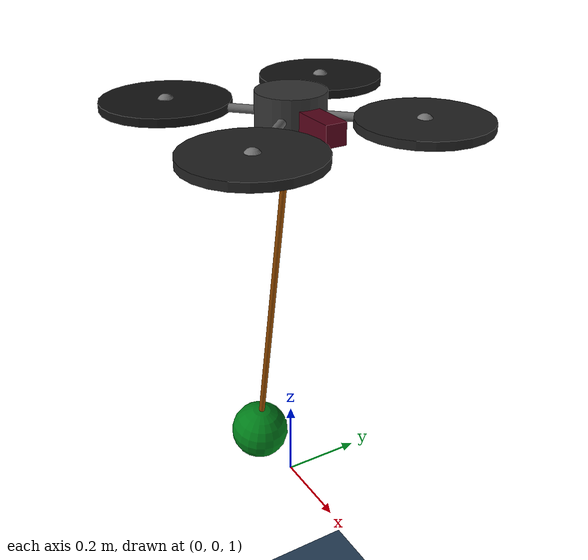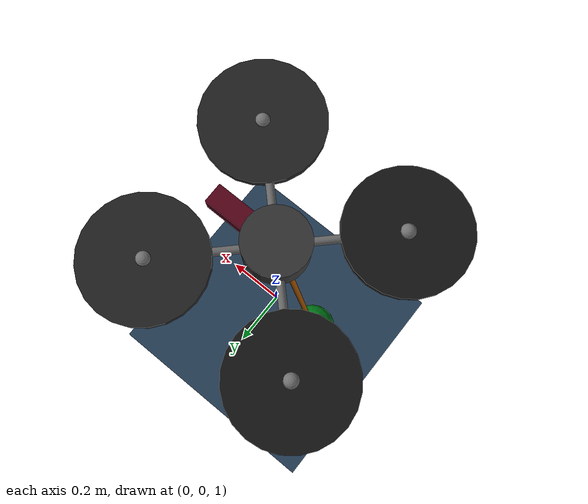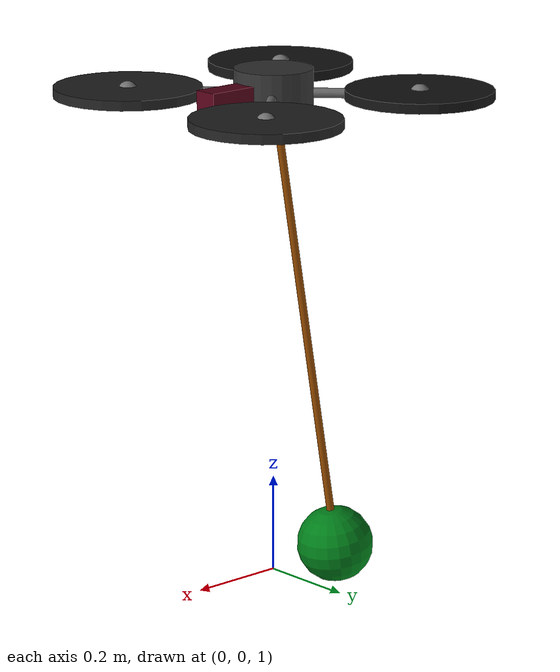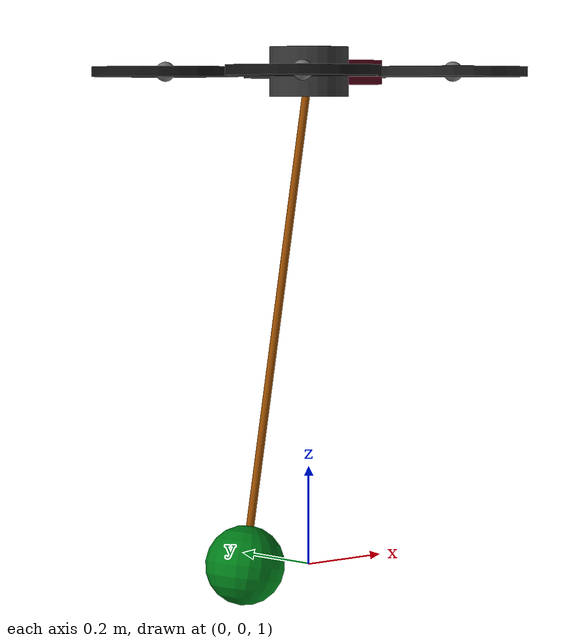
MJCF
<!-- By Valerii Lisnychuk, goldunlevar@gmail.com-->
<!-- Diplomova prace, leto 2025, CVUT FS-->

<!-- Symetricky model, tvar X, bez odporu prostredi-->
<mujoco model="Model quadcopter_v2_debug">
	<statistic meansize="0.15"/>
	<option timestep ="0.05" density="0" viscosity="0"/> <!-- density="1.205" viscosity="1.8e-5" density[kg/m3] viscosity[kg/(ms)]-->

	<visual>
		<headlight diffuse="0.7 0.7 0.7" ambient="0.7 0.7 0.7" specular="1.5 1.5 1.5"/>
		<rgba haze="0.1 0.2 0.3 1"/>
		<global azimuth="100" elevation="-30" ellipsoidinertia="true"/>
		<map zfar="500"/>
  	</visual>

	<asset>
		<!--scena-->
		<texture type="skybox" builtin="gradient" rgb1="0.3 0.5 0.7" rgb2="0 0 0" width="512" height="512"/><!--nebo-->

		<texture type="2d" name="podlaha_textura" builtin="checker" mark="edge" rgb1="0.2 0.3 0.4" rgb2="0.1 0.2 0.3" markrgb="0.8 0.8 0.8" width="255" height="255"/>
		<material name="floor" texture="podlaha_textura" texuniform="true" texrepeat="3 3" reflectance="0"/><!--podlaha-->

		<!-- Темное карбоновое покрытие -->
        <texture type="2d" name="carbon_texture_dark" builtin="checker" mark="cross" rgb1="0.03 0.03 0.03" rgb2="0.12 0.12 0.12" markrgb="0.18 0.18 0.18" width="1024" height="1024"/>
		<material name="carbon_dark" texture="carbon_texture_dark" texuniform="true" texrepeat="50 50" reflectance="0.3" shininess="0.8" specular="0.5"/>

        <!-- Светлое карбоновое покрытие -->
		<texture type="2d" name="carbon_texture_light" builtin="checker" mark="cross" rgb1="0.08 0.08 0.08" rgb2="0.18 0.18 0.18" markrgb="0.25 0.25 0.25" width="1024" height="1024"/>
        <material name="carbon_light" texture="carbon_texture_light" texuniform="true" texrepeat="50 50" reflectance="0.35" shininess="0.85" specular="0.6"/>
	</asset>

	<worldbody><!--SI units-->
		<!--svetlo a podlaha-->
        <light diffuse="0.7 0.7 0.7" pos="0 0 30" dir="0 0 -1" directional="false"/>
		<geom name="floor" type="plane" size="0 0 0.1" material="floor"/>

		<!--kvadrokoptera-->
		<body name="quadcopter" pos="0 0 2">
			<geom type="cylinder" name="zakladna" size="0.08 0.05" mass="0.8" rgba="0.2 0.2 0.2 1"/>
			<geom type="box" name="pred" size="0.1 0.025 0.025" mass="0" pos="0.08 0 0" rgba="0.3373 0.0118 0.0980 1"/>
			<site name="IMU+other" type="capsule" size="0.04" rgba="1 1 0 1"/> <!--misto umisteni vsech senzoru-->
			<!--IMU=Inertial measurement unit-->

			<body euler="-90 45 0"> <!-- rotor1 - rotor3-->
				<geom type="cylinder" size="0.01 0.29" mass="0.55" rgba="0.41 0.41 0.41 1"/>

				<geom type="cylinder" name="rotor1" pos="0 0 0.29" euler="90 0 0" size="0.15 0.01" mass="0.025" material="carbon_light"/>
				<site name="thrust1" pos="0 0 0.29" euler="90 0 0" size="0.02" rgba="0.45 0.45 0.45 1"/>

				<geom type="cylinder" name="rotor3" pos="0 0 -0.29" euler="90 0 0" size="0.15 0.01" mass="0.025" material="carbon_dark"/>
				<site name="thrust3" pos="0 0 -0.29" euler="90 0 0" size="0.02" rgba="0.45 0.45 0.45 1"/>
			</body>

			<body euler="-90 -45 0"> <!-- rotor2 - rotor4-->
				<geom type="cylinder" size="0.01 0.29" mass="0.55" rgba="0.41 0.41 0.41 1"/>

				<geom type="cylinder" name="rotor2" pos="0 0 -0.29" euler="90 0 0" size="0.15 0.01" mass="0.025" material="carbon_light"/>
				<site name="thrust2" pos="0 0 -0.29" euler="90 0 0" size="0.02" rgba="0.45 0.45 0.45 1"/>

				<geom type="cylinder" name="rotor4" pos="0 0 0.29" euler="90 0 0" size="0.15 0.01" mass="0.025" material="carbon_dark"/>
				<site name="thrust4" pos="0 0 0.29" euler="90 0 0" size="0.02" rgba="0.45 0.45 0.45 1"/>
			</body>

			<!--load-->
			<body name="pendulum" pos="0 0 0" euler="0 10 0">
				<joint type="ball" name="spojeni_lano"/>
				<geom type="cylinder" name="lano" pos="0 0 -0.5" size="0.008 0.5" mass="0" rgba="0.58 0.29 0 1" contype="0" conaffinity="0"/>

				<geom name="load" type="sphere" size="0.08" pos="0 0 -1" mass="0" rgba="0 0.5 0.1 1"/> <!--skorepina-->
				<geom name="point_mass" type="sphere" size="0.001" pos="0 0 -1" mass="1" rgba="0 0.5 0.1 1"/> <!--point mass-->
			</body>
		</body>
	</worldbody>

	<sensor>
		<!--lze cist v kodu z mjData.sensordata-->
		<accelerometer name="akcelerometr" site="IMU+other"/> <!--3 outputs-->
		<velocimeter name="mereni rychlosti" site="IMU+other"/> <!--3 outputs-->
		<gyro name="gyroskop" site="IMU+other"/> <!--3 outputs-->
		<force name="senzor sily" site="IMU+other"/> <!--3 outputs-->
		<torque name="senzor momentu" site="IMU+other"/> <!--3 outputs-->

		<!--testove senzory na aktuatoru-->
	</sensor>

	<actuator>

		<motor name="motor1" site="thrust1" gear="0 0 1 0 0 1" ctrlrange="0 4"/> <!--CCW-->
		<motor name="motor2" site="thrust2" gear="0 0 1 0 0 -1" ctrlrange="0 4"/> <!--CW-->
		<motor name="motor3" site="thrust3" gear="0 0 1 0 0 1" ctrlrange="0 4"/> <!--CCW-->
		<motor name="motor4" site="thrust4" gear="0 0 1 0 0 -1" ctrlrange="0 4"/> <!--CW-->
	</actuator>

</mujoco>
